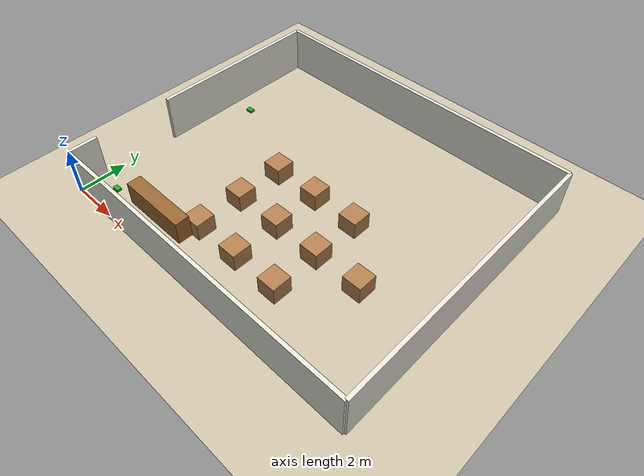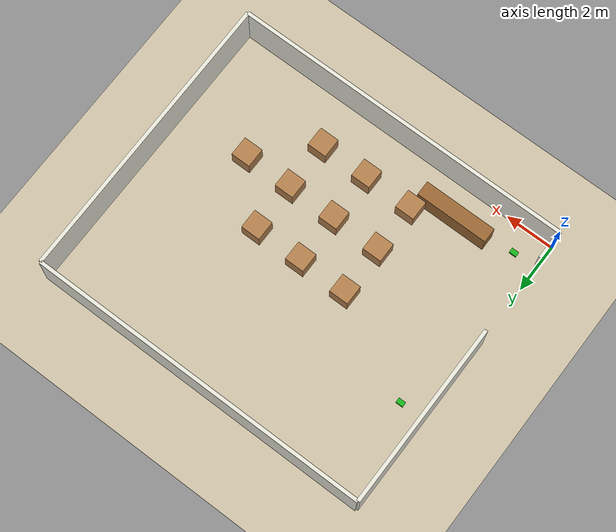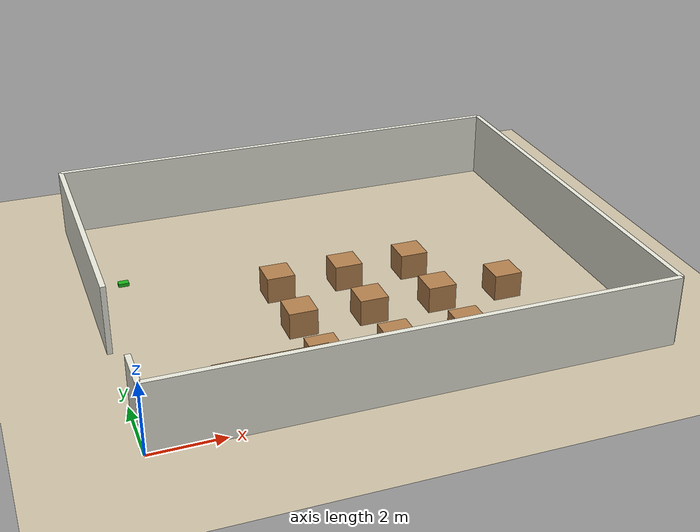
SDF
<?xml version="1.0" ?>
<sdf version="1.9">
  <world name="bonbon_cafe">

    <!-- Physics -->
    <physics name="default_physics" type="ode">
      <max_step_size>0.001</max_step_size>
      <real_time_factor>1.0</real_time_factor>
      <real_time_update_rate>1000</real_time_update_rate>
    </physics>

    <!-- Plugins -->
    <plugin filename="gz-sim-physics-system" name="gz::sim::systems::Physics"/>
    <plugin filename="gz-sim-user-commands-system" name="gz::sim::systems::UserCommands"/>
    <plugin filename="gz-sim-scene-broadcaster-system" name="gz::sim::systems::SceneBroadcaster"/>
    <plugin filename="gz-sim-sensors-system" name="gz::sim::systems::Sensors">
      <render_engine>ogre2</render_engine>
    </plugin>
    <plugin filename="gz-sim-imu-system" name="gz::sim::systems::Imu"/>
    <plugin filename="gz-sim-contact-system" name="gz::sim::systems::Contact"/>

    <!-- Lighting -->
    <light name="sun" type="directional">
      <cast_shadows>true</cast_shadows>
      <pose>0 0 10 0 0 0</pose>
      <diffuse>0.8 0.8 0.8 1</diffuse>
      <specular>0.2 0.2 0.2 1</specular>
      <direction>-0.5 0.1 -0.9</direction>
    </light>
    <light name="ambient_fill" type="point">
      <pose>7 6 4 0 0 0</pose>
      <diffuse>0.4 0.4 0.4 1</diffuse>
      <specular>0.0 0.0 0.0 1</specular>
      <attenuation><range>20</range><constant>0.5</constant></attenuation>
    </light>

    <!-- Ground plane -->
    <model name="ground_plane">
      <static>true</static>
      <link name="link">
        <collision name="collision">
          <geometry><plane><normal>0 0 1</normal><size>30 30</size></plane></geometry>
        </collision>
        <visual name="visual">
          <geometry><plane><normal>0 0 1</normal><size>30 30</size></plane></geometry>
          <material>
            <ambient>0.8 0.75 0.65 1</ambient>
            <diffuse>0.8 0.75 0.65 1</diffuse>
          </material>
        </visual>
      </link>
    </model>

    <!-- ── Outer walls (14 m × 12 m) ──────────────────────────────────────── -->
    <!-- South wall -->
    <model name="wall_south">
      <static>true</static>
      <pose>7 0 1 0 0 0</pose>
      <link name="link">
        <collision name="c"><geometry><box><size>14 0.15 2</size></box></geometry></collision>
        <visual name="v"><geometry><box><size>14 0.15 2</size></box></geometry>
          <material><ambient>0.9 0.9 0.85 1</ambient><diffuse>0.9 0.9 0.85 1</diffuse></material>
        </visual>
      </link>
    </model>
    <!-- North wall -->
    <model name="wall_north">
      <static>true</static>
      <pose>7 12 1 0 0 0</pose>
      <link name="link">
        <collision name="c"><geometry><box><size>14 0.15 2</size></box></geometry></collision>
        <visual name="v"><geometry><box><size>14 0.15 2</size></box></geometry>
          <material><ambient>0.9 0.9 0.85 1</ambient><diffuse>0.9 0.9 0.85 1</diffuse></material>
        </visual>
      </link>
    </model>
    <!-- West wall (with door gap 1.5 m at y=1.5) -->
    <model name="wall_west_lower">
      <static>true</static>
      <pose>0 0.6 1 0 0 0</pose>
      <link name="link">
        <collision name="c"><geometry><box><size>0.15 1.2 2</size></box></geometry></collision>
        <visual name="v"><geometry><box><size>0.15 1.2 2</size></box></geometry>
          <material><ambient>0.9 0.9 0.85 1</ambient><diffuse>0.9 0.9 0.85 1</diffuse></material>
        </visual>
      </link>
    </model>
    <model name="wall_west_upper">
      <static>true</static>
      <pose>0 8.25 1 0 0 0</pose>
      <link name="link">
        <collision name="c"><geometry><box><size>0.15 7.5 2</size></box></geometry></collision>
        <visual name="v"><geometry><box><size>0.15 7.5 2</size></box></geometry>
          <material><ambient>0.9 0.9 0.85 1</ambient><diffuse>0.9 0.9 0.85 1</diffuse></material>
        </visual>
      </link>
    </model>
    <!-- East wall -->
    <model name="wall_east">
      <static>true</static>
      <pose>14 6 1 0 0 0</pose>
      <link name="link">
        <collision name="c"><geometry><box><size>0.15 12 2</size></box></geometry></collision>
        <visual name="v"><geometry><box><size>0.15 12 2</size></box></geometry>
          <material><ambient>0.9 0.9 0.85 1</ambient><diffuse>0.9 0.9 0.85 1</diffuse></material>
        </visual>
      </link>
    </model>

    <!-- ── Service counter (3.0 m × 0.6 m) ───────────────────────────────── -->
    <model name="counter">
      <static>true</static>
      <pose>3.5 1.3 0.5 0 0 0</pose>
      <link name="link">
        <collision name="c"><geometry><box><size>3.0 0.6 1.0</size></box></geometry></collision>
        <visual name="v"><geometry><box><size>3.0 0.6 1.0</size></box></geometry>
          <material><ambient>0.6 0.4 0.2 1</ambient><diffuse>0.6 0.4 0.2 1</diffuse></material>
        </visual>
      </link>
    </model>

    <!-- ── Dining tables (0.8 m × 0.8 m × 0.75 m) ───────────────────────── -->
    <!-- Row 1: tables 1-3 at x=5 -->
    <model name="table_1"><static>true</static><pose>5 2 0.375 0 0 0</pose>
      <link name="link"><collision name="c"><geometry><box><size>0.8 0.8 0.75</size></box></geometry></collision>
        <visual name="v"><geometry><box><size>0.8 0.8 0.75</size></box></geometry>
          <material><ambient>0.7 0.5 0.3 1</ambient><diffuse>0.7 0.5 0.3 1</diffuse></material></visual>
      </link>
    </model>
    <model name="table_2"><static>true</static><pose>5 4 0.375 0 0 0</pose>
      <link name="link"><collision name="c"><geometry><box><size>0.8 0.8 0.75</size></box></geometry></collision>
        <visual name="v"><geometry><box><size>0.8 0.8 0.75</size></box></geometry>
          <material><ambient>0.7 0.5 0.3 1</ambient><diffuse>0.7 0.5 0.3 1</diffuse></material></visual>
      </link>
    </model>
    <model name="table_3"><static>true</static><pose>5 6 0.375 0 0 0</pose>
      <link name="link"><collision name="c"><geometry><box><size>0.8 0.8 0.75</size></box></geometry></collision>
        <visual name="v"><geometry><box><size>0.8 0.8 0.75</size></box></geometry>
          <material><ambient>0.7 0.5 0.3 1</ambient><diffuse>0.7 0.5 0.3 1</diffuse></material></visual>
      </link>
    </model>
    <!-- Row 2: tables 4-6 at x=7 -->
    <model name="table_4"><static>true</static><pose>7 2 0.375 0 0 0</pose>
      <link name="link"><collision name="c"><geometry><box><size>0.8 0.8 0.75</size></box></geometry></collision>
        <visual name="v"><geometry><box><size>0.8 0.8 0.75</size></box></geometry>
          <material><ambient>0.7 0.5 0.3 1</ambient><diffuse>0.7 0.5 0.3 1</diffuse></material></visual>
      </link>
    </model>
    <model name="table_5"><static>true</static><pose>7 4 0.375 0 0 0</pose>
      <link name="link"><collision name="c"><geometry><box><size>0.8 0.8 0.75</size></box></geometry></collision>
        <visual name="v"><geometry><box><size>0.8 0.8 0.75</size></box></geometry>
          <material><ambient>0.7 0.5 0.3 1</ambient><diffuse>0.7 0.5 0.3 1</diffuse></material></visual>
      </link>
    </model>
    <model name="table_6"><static>true</static><pose>7 6 0.375 0 0 0</pose>
      <link name="link"><collision name="c"><geometry><box><size>0.8 0.8 0.75</size></box></geometry></collision>
        <visual name="v"><geometry><box><size>0.8 0.8 0.75</size></box></geometry>
          <material><ambient>0.7 0.5 0.3 1</ambient><diffuse>0.7 0.5 0.3 1</diffuse></material></visual>
      </link>
    </model>
    <!-- Row 3: tables 7-10 at x=9-11 -->
    <model name="table_7"><static>true</static><pose>9 2 0.375 0 0 0</pose>
      <link name="link"><collision name="c"><geometry><box><size>0.8 0.8 0.75</size></box></geometry></collision>
        <visual name="v"><geometry><box><size>0.8 0.8 0.75</size></box></geometry>
          <material><ambient>0.7 0.5 0.3 1</ambient><diffuse>0.7 0.5 0.3 1</diffuse></material></visual>
      </link>
    </model>
    <model name="table_8"><static>true</static><pose>9 4 0.375 0 0 0</pose>
      <link name="link"><collision name="c"><geometry><box><size>0.8 0.8 0.75</size></box></geometry></collision>
        <visual name="v"><geometry><box><size>0.8 0.8 0.75</size></box></geometry>
          <material><ambient>0.7 0.5 0.3 1</ambient><diffuse>0.7 0.5 0.3 1</diffuse></material></visual>
      </link>
    </model>
    <model name="table_9"><static>true</static><pose>9 6 0.375 0 0 0</pose>
      <link name="link"><collision name="c"><geometry><box><size>0.8 0.8 0.75</size></box></geometry></collision>
        <visual name="v"><geometry><box><size>0.8 0.8 0.75</size></box></geometry>
          <material><ambient>0.7 0.5 0.3 1</ambient><diffuse>0.7 0.5 0.3 1</diffuse></material></visual>
      </link>
    </model>
    <model name="table_10"><static>true</static><pose>11 4 0.375 0 0 0</pose>
      <link name="link"><collision name="c"><geometry><box><size>0.8 0.8 0.75</size></box></geometry></collision>
        <visual name="v"><geometry><box><size>0.8 0.8 0.75</size></box></geometry>
          <material><ambient>0.7 0.5 0.3 1</ambient><diffuse>0.7 0.5 0.3 1</diffuse></material></visual>
      </link>
    </model>

    <!-- ── Charging docks ──────────────────────────────────────────────────── -->
    <!-- charger_a at (1.0, 1.0) — west wall -->
    <model name="charger_a">
      <static>true</static>
      <pose>1.0 1.0 0.05 0 0 0</pose>
      <link name="link">
        <collision name="c"><geometry><box><size>0.3 0.2 0.10</size></box></geometry></collision>
        <visual name="v"><geometry><box><size>0.3 0.2 0.10</size></box></geometry>
          <material><ambient>0.1 0.7 0.1 1</ambient><diffuse>0.1 0.7 0.1 1</diffuse></material>
        </visual>
      </link>
    </model>
    <!-- charger_b at (1.0, 8.0) — north-west area -->
    <model name="charger_b">
      <static>true</static>
      <pose>1.0 8.0 0.05 0 0 0</pose>
      <link name="link">
        <collision name="c"><geometry><box><size>0.3 0.2 0.10</size></box></geometry></collision>
        <visual name="v"><geometry><box><size>0.3 0.2 0.10</size></box></geometry>
          <material><ambient>0.1 0.7 0.1 1</ambient><diffuse>0.1 0.7 0.1 1</diffuse></material>
        </visual>
      </link>
    </model>

    <!-- ── Robot spawn ────────────────────────────────────────────────────── -->
    <!-- Robot is spawned by the robot_state_publisher launch, not here.
         This model include is for reference only.                            -->

  </world>
</sdf>
